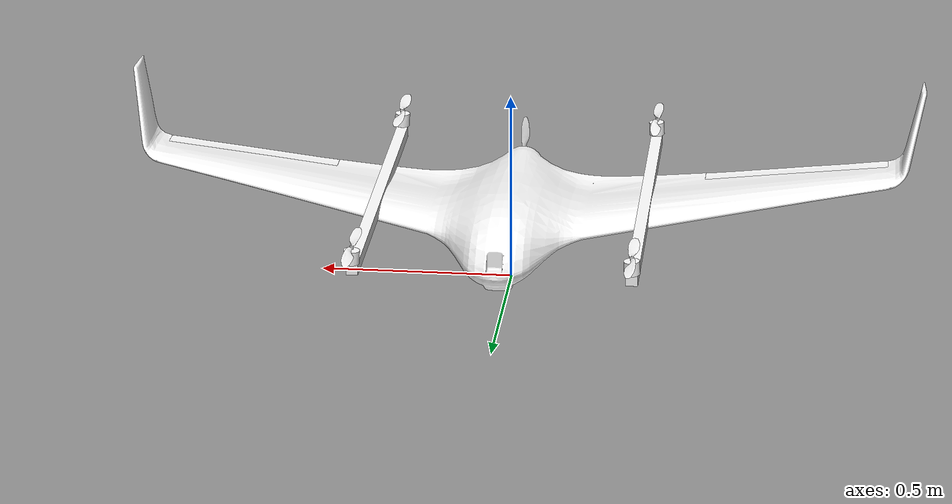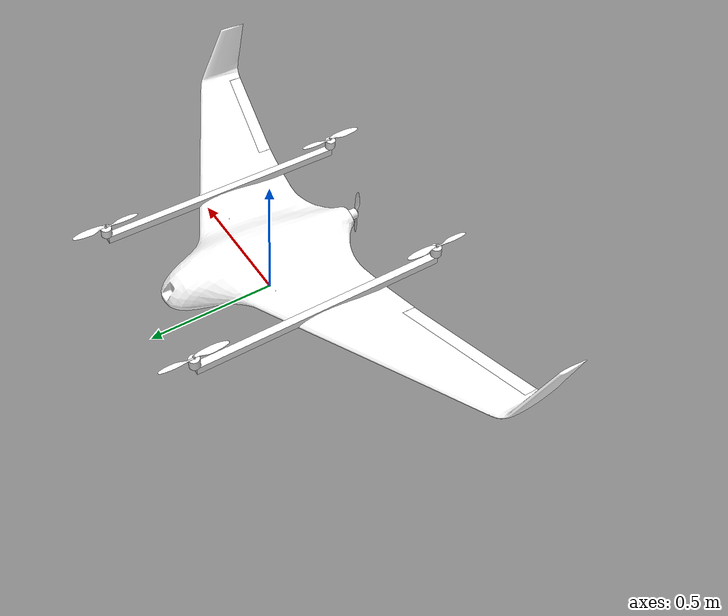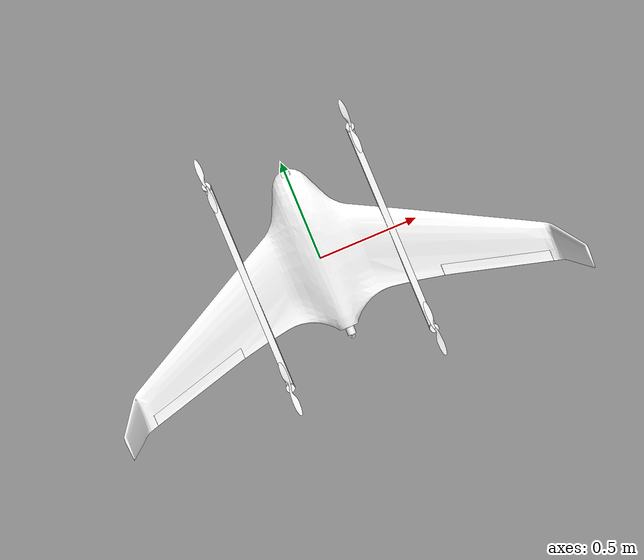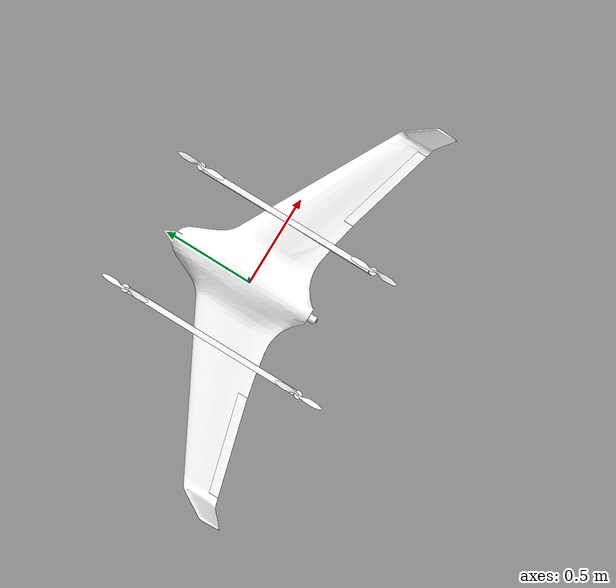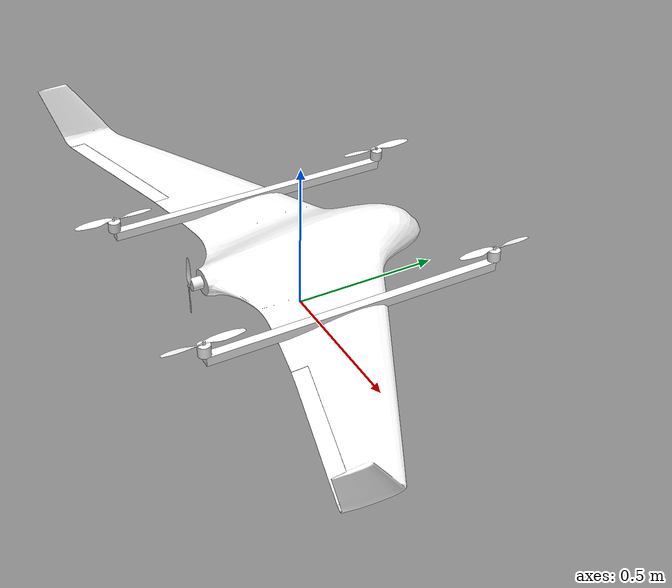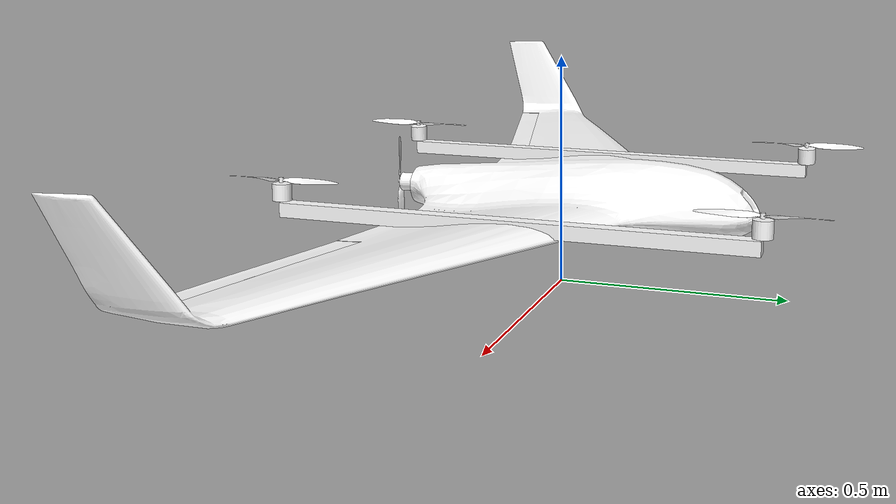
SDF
<sdf version="1.7">
 <world name="runway">
  <gravity>0 0 -9.8000000000000007</gravity>
  <magnetic_field>2.5e-05 1.0e-06 4.0e-05</magnetic_field>
  <atmosphere type="adiabatic"><temperature>288.15</temperature><pressure>101325</pressure></atmosphere>
  <plugin filename="gz-sim-physics-system" name="gz::sim::systems::Physics"/>
  <plugin filename="gz-sim-user-commands-system" name="gz::sim::systems::UserCommands"/>
  <plugin filename="gz-sim-scene-broadcaster-system" name="gz::sim::systems::SceneBroadcaster"/>
  <plugin filename="gz-sim-imu-system" name="gz::sim::systems::Imu"/>
  <plugin filename="gz-sim-magnetometer-system" name="gz::sim::systems::Magnetometer"/>
  <plugin filename="gz-sim-navsat-system" name="gz::sim::systems::NavSat"/>
  <spherical_coordinates>
   <latitude_deg>-35.363262</latitude_deg>
   <longitude_deg>149.165237</longitude_deg>
   <elevation>584</elevation>
   <heading_deg>0</heading_deg>
   <surface_model>EARTH_WGS84</surface_model>
  </spherical_coordinates>
  <scene><ambient>1.0 1.0 1.0</ambient><background>0.8 0.8 0.8</background></scene>
  <light type="directional" name="sun">
   <pose>0 0 10 0 0 0</pose>
   <diffuse>0.8 0.8 0.8 1</diffuse>
   <specular>0.8 0.8 0.8 1</specular>
   <attenuation>
    <range>1000</range>
    <constant>0.9</constant>
    <linear>0.01</linear>
    <quadratic>0.001</quadratic>
   </attenuation>
   <direction>-0.5 0.1 -0.9</direction>
  </light>
  <include><pose degrees="true">0 0 0.2 0 0 90</pose><uri>model://skywalker_x8_quad</uri></include>
 </world>
</sdf>

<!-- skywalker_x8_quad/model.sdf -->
<sdf version="1.7">
  <model name="skywalker_x8_quad">
    <pose>0 0 0.246 0 0 0</pose>

    <link name='base_link'>
      <pose>0 0 0 0 0 0</pose>
      <inertial>
        <pose>0 0 0 0 0 0</pose>
        <mass>4.5</mass>
        <inertia>
          <ixx>0.45</ixx>
          <ixy>0</ixy>
          <ixz>0.06</ixz>
          <iyy>0.325</iyy>
          <iyz>0</iyz>
          <izz>0.75</izz>
        </inertia>
      </inertial>
      <collision name='base_link_collision'>
        <pose>0 0 -0.07 0 0 0</pose>
        <geometry>
          <box>
            <size>0.80 2.15 0.2</size>
          </box>
        </geometry>
      </collision>
      <visual name='base_link_visual'>
        <geometry>
          <mesh>
            <uri>model://skywalker_x8/meshes/x8_wing.dae</uri>
          </mesh>
        </geometry>
        <material>
          <diffuse>1.0 1.0 1.0</diffuse>
          <specular>1.0 1.0 1.0</specular>
          <pbr>
            <metal>
                <albedo_map>model://skywalker_x8/materials/textures/x8.tga</albedo_map>
                <metalness>0.1</metalness>
            </metal>
          </pbr>
        </material>
      </visual>
      <visual name='left_motor_column'>
        <pose>0 0.35 0.01 0 0 0</pose>
        <geometry>
          <box>
            <size>0.98 0.03 0.03</size>
          </box>
        </geometry>
        <material>
          <ambient>1 1 1</ambient>
          <diffuse>1 1 1</diffuse>
          <specular>1 1 1</specular>
          <pbr>
            <metal>
              <albedo_map>model://skywalker_x8/materials/textures/metal_graphite/metal_graphite_basecolor.jpg</albedo_map>
              <metalness_map>model://skywalker_x8/materials/textures/metal_graphite/metal_graphite_metallic.jpg</metalness_map>
              <normal_map>model://skywalker_x8/materials/textures/metal_graphite/metal_graphite_normal.jpg</normal_map>
              <roughness_map>model://skywalker_x8/materials/textures/metal_graphite/metal_graphite_roughness.jpg</roughness_map>
              <roughness>1.0</roughness>
              <metalness>1.0</metalness>
            </metal>
          </pbr>
        </material>
      </visual>
      <visual name='right_motor_column'>
        <pose>0 -0.35 0.01 0 0 0</pose>
        <geometry>
          <box>
            <size>0.98 0.03 0.03</size>
          </box>
        </geometry>
        <material>
          <ambient>1 1 1</ambient>
          <diffuse>1 1 1</diffuse>
          <specular>1 1 1</specular>
          <pbr>
            <metal>
              <albedo_map>model://skywalker_x8/materials/textures/metal_graphite/metal_graphite_basecolor.jpg</albedo_map>
              <metalness_map>model://skywalker_x8/materials/textures/metal_graphite/metal_graphite_metallic.jpg</metalness_map>
              <normal_map>model://skywalker_x8/materials/textures/metal_graphite/metal_graphite_normal.jpg</normal_map>
              <roughness_map>model://skywalker_x8/materials/textures/metal_graphite/metal_graphite_roughness.jpg</roughness_map>
              <roughness>1.0</roughness>
              <metalness>1.0</metalness>
            </metal>
          </pbr>
        </material>
      </visual>
      <visual name='m0'>
        <pose degrees="true">0.49 -0.35 0.045 -3 0 0</pose>
        <geometry>
          <cylinder>
            <length>0.035</length>
            <radius>0.02</radius>
          </cylinder>
        </geometry>
        <material>
          <ambient>1 1 1</ambient>
          <diffuse>1 1 1</diffuse>
          <specular>1 1 1</specular>
          <pbr>
            <metal>
              <albedo_map>model://skywalker_x8/materials/textures/blue_metal/blue_metal_basecolor.jpg</albedo_map>
              <metalness_map>model://skywalker_x8/materials/textures/blue_metal/blue_metal_metallic.jpg</metalness_map>
              <normal_map>model://skywalker_x8/materials/textures/blue_metal/blue_metal_normal.jpg</normal_map>
              <roughness_map>model://skywalker_x8/materials/textures/blue_metal/blue_metal_roughness.jpg</roughness_map>
              <roughness>1.0</roughness>
              <metalness>1.0</metalness>
            </metal>
          </pbr>
        </material>
      </visual>
      <visual name='m1'>
        <pose degrees="true">-0.49 0.35 0.045 3 0 0</pose>
        <geometry>
          <cylinder>
            <length>0.035</length>
            <radius>0.02</radius>
          </cylinder>
        </geometry>
        <material>
          <ambient>1 1 1</ambient>
          <diffuse>1 1 1</diffuse>
          <specular>1 1 1</specular>
          <pbr>
            <metal>
              <albedo_map>model://skywalker_x8/materials/textures/blue_metal/blue_metal_basecolor.jpg</albedo_map>
              <metalness_map>model://skywalker_x8/materials/textures/blue_metal/blue_metal_metallic.jpg</metalness_map>
              <normal_map>model://skywalker_x8/materials/textures/blue_metal/blue_metal_normal.jpg</normal_map>
              <roughness_map>model://skywalker_x8/materials/textures/blue_metal/blue_metal_roughness.jpg</roughness_map>
              <roughness>1.0</roughness>
              <metalness>1.0</metalness>
            </metal>
          </pbr>
        </material>
      </visual>
      <visual name='m2'>
        <pose degrees="true">0.49 0.35 0.045 3 0 0</pose>
        <geometry>
          <cylinder>
            <length>0.035</length>
            <radius>0.02</radius>
          </cylinder>
        </geometry>
        <material>
          <ambient>1 1 1</ambient>
          <diffuse>1 1 1</diffuse>
          <specular>1 1 1</specular>
          <pbr>
            <metal>
              <albedo_map>model://skywalker_x8/materials/textures/blue_metal/blue_metal_basecolor.jpg</albedo_map>
              <metalness_map>model://skywalker_x8/materials/textures/blue_metal/blue_metal_metallic.jpg</metalness_map>
              <normal_map>model://skywalker_x8/materials/textures/blue_metal/blue_metal_normal.jpg</normal_map>
              <roughness_map>model://skywalker_x8/materials/textures/blue_metal/blue_metal_roughness.jpg</roughness_map>
              <roughness>1.0</roughness>
              <metalness>1.0</metalness>
            </metal>
          </pbr>
        </material>
      </visual>
      <visual name='m3'>
        <pose degrees="true">-0.49 -0.35 0.045 -3 0 0</pose>
        <geometry>
          <cylinder>
            <length>0.035</length>
            <radius>0.02</radius>
          </cylinder>
        </geometry>
        <material>
          <ambient>1 1 1</ambient>
          <diffuse>1 1 1</diffuse>
          <specular>1 1 1</specular>
          <pbr>
            <metal>
              <albedo_map>model://skywalker_x8/materials/textures/blue_metal/blue_metal_basecolor.jpg</albedo_map>
              <metalness_map>model://skywalker_x8/materials/textures/blue_metal/blue_metal_metallic.jpg</metalness_map>
              <normal_map>model://skywalker_x8/materials/textures/blue_metal/blue_metal_normal.jpg</normal_map>
              <roughness_map>model://skywalker_x8/materials/textures/blue_metal/blue_metal_roughness.jpg</roughness_map>
              <roughness>1.0</roughness>
              <metalness>1.0</metalness>
            </metal>
          </pbr>
        </material>
      </visual>
      <visual name='m4'>
        <pose degrees="true">-0.361 0 0.0 0 90 0</pose>
        <geometry>
          <cylinder>
            <length>0.035</length>
            <radius>0.02</radius>
          </cylinder>
        </geometry>
        <material>
          <ambient>1 1 1</ambient>
          <diffuse>1 1 1</diffuse>
          <specular>1 1 1</specular>
          <pbr>
            <metal>
              <albedo_map>model://skywalker_x8/materials/textures/blue_metal/blue_metal_basecolor.jpg</albedo_map>
              <metalness_map>model://skywalker_x8/materials/textures/blue_metal/blue_metal_metallic.jpg</metalness_map>
              <normal_map>model://skywalker_x8/materials/textures/blue_metal/blue_metal_normal.jpg</normal_map>
              <roughness_map>model://skywalker_x8/materials/textures/blue_metal/blue_metal_roughness.jpg</roughness_map>
              <roughness>1.0</roughness>
              <metalness>1.0</metalness>
            </metal>
          </pbr>
        </material>
      </visual>
      <sensor name="magnetometer_sensor" type="magnetometer">
        <pose>0 0 0 0 0 0</pose>
        <always_on>1</always_on>
        <update_rate>50</update_rate>
      </sensor>
      <sensor name="navsat_sensor" type="navsat">
        <always_on>1</always_on>
        <update_rate>10</update_rate>
        <navsat>
          <position_sensing></position_sensing>
          <velocity_sensing></velocity_sensing>
        </navsat>
      </sensor>
      <!-- save for debugging use -->
    </link>

    <link name='rotor_0'>
      <pose degrees="true">0.49 -0.35 0.07 -3 0 0</pose>
      <inertial>
        <pose>0 0 0 0 0 0</pose>
        <mass>0.025</mass>
        <inertia>
          <ixx>9.75e-06</ixx>
          <ixy>0</ixy>
          <ixz>0</ixz>
          <iyy>0.000166704</iyy>
          <iyz>0</iyz>
          <izz>0.000167604</izz>
        </inertia>
      </inertial>
      <collision name='rotor_0_collision'>
        <pose>0 0 0 0 0 0</pose>
        <geometry>
          <cylinder>
            <length>0.005</length>
            <radius>0.105</radius>
          </cylinder>
        </geometry>
      </collision>
      <visual name='rotor_0_visual'>
        <pose>0 0 0 0 0 0</pose>
        <geometry>
          <mesh>
            <scale>1 1 1</scale>
            <uri>model://skywalker_x8/meshes/iris_prop_cw.dae</uri>
          </mesh>
        </geometry>
        <material>
          <diffuse>1.0 1.0 1.0</diffuse>
          <specular>1.0 1.0 1.0</specular>
          <pbr>
            <metal>
                <albedo_map>model://skywalker_x8/materials/textures/x8.tga</albedo_map>
                <metalness>0.5</metalness>
            </metal>
          </pbr>
        </material>
      </visual>
    </link>
    <joint name='rotor_0_joint' type='revolute'>
      <child>rotor_0</child>
      <parent>base_link</parent>
      <axis>
        <xyz>0 0 1</xyz>
        <limit>
          <lower>-1e+16</lower>
          <upper>1e+16</upper>
        </limit>
        <dynamics>
          <damping>0.002</damping>
        </dynamics>
        <use_parent_model_frame>1</use_parent_model_frame>
      </axis>
    </joint>

    <link name='rotor_1'>
      <pose degrees="true">-0.49 0.35 0.07 3 0 0</pose>
      <inertial>
        <pose>0 0 0 0 0 0</pose>
        <mass>0.025</mass>
        <inertia>
          <ixx>9.75e-06</ixx>
          <ixy>0</ixy>
          <ixz>0</ixz>
          <iyy>0.000166704</iyy>
          <iyz>0</iyz>
          <izz>0.000167604</izz>
        </inertia>
      </inertial>
      <collision name='rotor_1_collision'>
        <pose>0 0 0 0 0 0</pose>
        <geometry>
          <cylinder>
            <length>0.005</length>
            <radius>0.105</radius>
          </cylinder>
        </geometry>
      </collision>
      <visual name='rotor_1_visual'>
        <pose>0 0 0 0 0 0</pose>
        <geometry>
          <mesh>
            <scale>1 1 1</scale>
            <uri>model://skywalker_x8/meshes/iris_prop_cw.dae</uri>
          </mesh>
        </geometry>
        <material>
          <diffuse>1.0 1.0 1.0</diffuse>
          <specular>1.0 1.0 1.0</specular>
          <pbr>
            <metal>
                <albedo_map>model://skywalker_x8/materials/textures/x8.tga</albedo_map>
                <metalness>0.5</metalness>
            </metal>
          </pbr>
        </material>
      </visual>
    </link>
    <joint name='rotor_1_joint' type='revolute'>
      <child>rotor_1</child>
      <parent>base_link</parent>
      <axis>
        <xyz>0 0 1</xyz>
        <limit>
          <lower>-1e+16</lower>
          <upper>1e+16</upper>
        </limit>
        <dynamics>
          <damping>0.002</damping>
        </dynamics>
        <use_parent_model_frame>1</use_parent_model_frame>
      </axis>
    </joint>

    <link name='rotor_2'>
      <pose degrees="true">0.49 0.35 0.07 3 0 0</pose>
      <inertial>
        <pose>0 0 0 0 0 0</pose>
        <mass>0.025</mass>
        <inertia>
          <ixx>9.75e-06</ixx>
          <ixy>0</ixy>
          <ixz>0</ixz>
          <iyy>0.000166704</iyy>
          <iyz>0</iyz>
          <izz>0.000167604</izz>
        </inertia>
      </inertial>
      <collision name='rotor_2_collision'>
        <pose>0 0 0 0 0 0</pose>
        <geometry>
          <cylinder>
            <length>0.005</length>
            <radius>0.105</radius>
          </cylinder>
        </geometry>
      </collision>
      <visual name='rotor_2_visual'>
        <pose>0 0 0 0 0 0</pose>
        <geometry>
          <mesh>
            <scale>1 1 1</scale>
            <uri>model://skywalker_x8/meshes/iris_prop_ccw.dae</uri>
          </mesh>
        </geometry>
        <material>
          <diffuse>1.0 1.0 1.0</diffuse>
          <specular>1.0 1.0 1.0</specular>
          <pbr>
            <metal>
                <albedo_map>model://skywalker_x8/materials/textures/x8.tga</albedo_map>
                <metalness>0.5</metalness>
            </metal>
          </pbr>
        </material>
      </visual>
    </link>
    <joint name='rotor_2_joint' type='revolute'>
      <child>rotor_2</child>
      <parent>base_link</parent>
      <axis>
        <xyz>0 0 1</xyz>
        <limit>
          <lower>-1e+16</lower>
          <upper>1e+16</upper>
        </limit>
        <dynamics>
          <damping>0.002</damping>
        </dynamics>
        <use_parent_model_frame>1</use_parent_model_frame>
      </axis>
    </joint>

    <link name='rotor_3'>
      <pose degrees="true">-0.49 -0.35 0.07 -3 0 0</pose>
      <inertial>
        <pose>0 0 0 0 0 0</pose>
        <mass>0.025</mass>
        <inertia>
          <ixx>9.75e-06</ixx>
          <ixy>0</ixy>
          <ixz>0</ixz>
          <iyy>0.000166704</iyy>
          <iyz>0</iyz>
          <izz>0.000167604</izz>
        </inertia>
      </inertial>
      <collision name='rotor_3_collision'>
        <pose>0 0 0 0 0 0</pose>
        <geometry>
          <cylinder>
            <length>0.005</length>
            <radius>0.105</radius>
          </cylinder>
        </geometry>
      </collision>
      <visual name='rotor_3_visual'>
        <pose>0 0 0 0 0 0</pose>
        <geometry>
          <mesh>
            <scale>1 1 1</scale>
            <uri>model://skywalker_x8/meshes/iris_prop_ccw.dae</uri>
          </mesh>
        </geometry>
        <material>
          <diffuse>1.0 1.0 1.0</diffuse>
          <specular>1.0 1.0 1.0</specular>
          <pbr>
            <metal>
                <albedo_map>model://skywalker_x8/materials/textures/x8.tga</albedo_map>
                <metalness>0.5</metalness>
            </metal>
          </pbr>
        </material>
      </visual>
    </link>
    <joint name='rotor_3_joint' type='revolute'>
      <child>rotor_3</child>
      <parent>base_link</parent>
      <axis>
        <xyz>0 0 1</xyz>
        <limit>
          <lower>-1e+16</lower>
          <upper>1e+16</upper>
        </limit>
        <dynamics>
          <damping>0.002</damping>
        </dynamics>
        <use_parent_model_frame>1</use_parent_model_frame>
      </axis>
    </joint>

    <link name='rotor_pusher'>
      <pose degrees="true">-0.385 0 0.0 0 90 0</pose>
      <inertial>
        <mass>0.025</mass>
        <inertia>
          <ixx>9.75e-06</ixx>
          <ixy>0</ixy>
          <ixz>0</ixz>
          <iyy>0.000166704</iyy>
          <iyz>0</iyz>
          <izz>0.000167604</izz>
        </inertia>
      </inertial>
      <collision name='collision'>
        <pose>0 0 0 0 0 0</pose>
        <geometry>
          <cylinder>
            <length>0.005</length>
            <radius>0.065</radius>
          </cylinder>
        </geometry>
      </collision>
      <visual name='visual'>
        <pose>0 0 0 0 0 0</pose>
        <geometry>
          <mesh>
            <scale>0.8 0.8 0.8</scale>
            <uri>model://skywalker_x8/meshes/iris_prop_ccw.dae</uri>
          </mesh>
        </geometry>
        <material>
          <diffuse>1.0 1.0 1.0</diffuse>
          <specular>1.0 1.0 1.0</specular>
          <pbr>
            <metal>
                <albedo_map>model://skywalker_x8/materials/textures/x8.tga</albedo_map>
                <metalness>0.5</metalness>
            </metal>
          </pbr>
        </material>
      </visual>
    </link>
    <joint name='rotor_pusher_joint' type='revolute'>
      <child>rotor_pusher</child>
      <parent>base_link</parent>
      <axis>
        <xyz>0 0 1</xyz>
        <limit>
          <lower>-1e+16</lower>
          <upper>1e+16</upper>
        </limit>
        <dynamics>
          <damping>0.002</damping>
        </dynamics>
        <use_parent_model_frame>1</use_parent_model_frame>
      </axis>
    </joint>

    <link name="left_elevon">
      <inertial>
        <mass>0.1</mass>
        <inertia>
          <ixx>0.000102319</ixx>
          <ixy>0</ixy>
          <iyy>0.00334417</iyy>
          <ixz>0</ixz>
          <iyz>0</iyz>
          <izz>0.003446072</izz>
        </inertia>
        <pose>-0.30 0.75 -0.005 0 0 0</pose>
      </inertial>
      <visual name='left_elevon_visual'>
        <geometry>
          <mesh>
            <uri>model://skywalker_x8/meshes/x8_elevon_left.dae</uri>
          </mesh>
        </geometry>
        <material>
          <diffuse>1.0 1.0 1.0</diffuse>
          <specular>1.0 1.0 1.0</specular>
          <pbr>
            <metal>
                <albedo_map>model://skywalker_x8/materials/textures/x8.tga</albedo_map>
                <metalness>0.1</metalness>
            </metal>
          </pbr>
        </material>
      </visual>
    </link>

    <link name="right_elevon">
      <inertial>
        <mass>0.1</mass>
        <inertia>
          <ixx>0.000102319</ixx>
          <ixy>0</ixy>
          <iyy>0.00334417</iyy>
          <ixz>0</ixz>
          <iyz>0</iyz>
          <izz>0.003446072</izz>
        </inertia>
        <pose>-0.30 -0.75 -0.005 0 0 0</pose>
      </inertial>
      <visual name='right_elevon_visual'>
        <geometry>
          <mesh>
            <uri>model://skywalker_x8/meshes/x8_elevon_right.dae</uri>
          </mesh>
        </geometry>
        <material>
          <diffuse>1.0 1.0 1.0</diffuse>
          <specular>1.0 1.0 1.0</specular>
          <pbr>
            <metal>
                <albedo_map>model://skywalker_x8/materials/textures/x8.tga</albedo_map>
                <metalness>0.1</metalness>
            </metal>
          </pbr>
        </material>
      </visual>
    </link>

    <!-- Joint range -30/+30 deg. -->
    <joint name='left_elevon_joint' type='revolute'>
      <parent>base_link</parent>
      <child>left_elevon</child>
      <pose>-0.27 0.6 -0.005 0 0 0.265</pose>
      <axis>
        <xyz>0 1 0</xyz>
        <limit>
          <lower>-0.53</lower>
          <upper>0.53</upper>
        </limit>
        <dynamics>
          <damping>0.1</damping>
        </dynamics>
      </axis>
    </joint>

    <!-- Joint range -30/+30 deg. -->
    <joint name='right_elevon_joint' type='revolute'>
      <parent>base_link</parent>
      <child>right_elevon</child>
      <pose>-0.27 -0.6 -0.005 0 0 -0.265</pose>
      <axis>
        <xyz>0 1 0</xyz>
        <limit>
          <lower>-0.53</lower>
          <upper>0.53</upper>
        </limit>
        <dynamics>
          <damping>0.1</damping>
        </dynamics>
      </axis>
    </joint>

    <!-- sensors -->
    <link name='imu_link'>
      <inertial>
        <pose>0 0 0 0 0 0</pose>
        <mass>0.15</mass>
        <inertia>
          <ixx>0.00002</ixx>
          <ixy>0</ixy>
          <ixz>0</ixz>
          <iyy>0.00002</iyy>
          <iyz>0</iyz>
          <izz>0.00002</izz>
        </inertia>
      </inertial>
      <sensor name="imu_sensor" type="imu">
        <pose degrees="true">0 0 0 180 0 0</pose>
        <always_on>1</always_on>
        <update_rate>1000.0</update_rate>
      </sensor>
    </link>
    <joint name='skywalker_x8_quad/imu_joint' type='revolute'>
      <child>imu_link</child>
      <parent>base_link</parent>
      <axis>
        <xyz>0 0 1</xyz>
        <limit>
          <lower>0</lower>
          <upper>0</upper>
          <effort>0</effort>
          <velocity>0</velocity>
        </limit>
        <dynamics>
          <damping>1.0</damping>
        </dynamics>
        <use_parent_model_frame>1</use_parent_model_frame>
      </axis>
    </joint>

    <!-- plugins -->
    <plugin filename="gz-sim-joint-state-publisher-system"
      name="gz::sim::systems::JointStatePublisher">
    </plugin>
    <!-- rotor_0 lift-drag -->
    <plugin filename="gz-sim-lift-drag-system"
        name="gz::sim::systems::LiftDrag">
      <a0>0.3</a0>
      <alpha_stall>1.4</alpha_stall>
      <cla>4.2500</cla>
      <cda>0.10</cda>
      <cma>0.0</cma>
      <cla_stall>-0.025</cla_stall>
      <cda_stall>0.0</cda_stall>
      <cma_stall>0.0</cma_stall>
      <area>0.002</area>
      <air_density>1.2041</air_density>
      <cp>0.084 0 0</cp>
      <forward>0 -1 0</forward>
      <upward>0 0 1</upward>
      <link_name>rotor_0</link_name>
    </plugin>
    <plugin filename="gz-sim-lift-drag-system"
        name="gz::sim::systems::LiftDrag">
      <a0>0.3</a0>
      <alpha_stall>1.4</alpha_stall>
      <cla>4.2500</cla>
      <cda>0.10</cda>
      <cma>0.0</cma>
      <cla_stall>-0.025</cla_stall>
      <cda_stall>0.0</cda_stall>
      <cma_stall>0.0</cma_stall>
      <area>0.002</area>
      <air_density>1.2041</air_density>
      <cp>-0.084 0 0</cp>
      <forward>0 1 0</forward>
      <upward>0 0 1</upward>
      <link_name>rotor_0</link_name>
    </plugin>
    <!-- rotor_1 lift-drag -->
    <plugin filename="gz-sim-lift-drag-system"
        name="gz::sim::systems::LiftDrag">
      <a0>0.3</a0>
      <alpha_stall>1.4</alpha_stall>
      <cla>4.2500</cla>
      <cda>0.10</cda>
      <cma>0.0</cma>
      <cla_stall>-0.025</cla_stall>
      <cda_stall>0.0</cda_stall>
      <cma_stall>0.0</cma_stall>
      <area>0.002</area>
      <air_density>1.2041</air_density>
      <cp>0.084 0 0</cp>
      <forward>0 -1 0</forward>
      <upward>0 0 1</upward>
      <link_name>rotor_1</link_name>
    </plugin>
    <plugin filename="gz-sim-lift-drag-system"
        name="gz::sim::systems::LiftDrag">
      <a0>0.3</a0>
      <alpha_stall>1.4</alpha_stall>
      <cla>4.2500</cla>
      <cda>0.10</cda>
      <cma>0.0</cma>
      <cla_stall>-0.025</cla_stall>
      <cda_stall>0.0</cda_stall>
      <cma_stall>0.0</cma_stall>
      <area>0.002</area>
      <air_density>1.2041</air_density>
      <cp>-0.084 0 0</cp>
      <forward>0 1 0</forward>
      <upward>0 0 1</upward>
      <link_name>rotor_1</link_name>
    </plugin>
    <!-- rotor_2 lift-drag -->
    <plugin filename="gz-sim-lift-drag-system"
        name="gz::sim::systems::LiftDrag">
      <a0>0.3</a0>
      <alpha_stall>1.4</alpha_stall>
      <cla>4.2500</cla>
      <cda>0.10</cda>
      <cma>0.0</cma>
      <cla_stall>-0.025</cla_stall>
      <cda_stall>0.0</cda_stall>
      <cma_stall>0.0</cma_stall>
      <area>0.002</area>
      <air_density>1.2041</air_density>
      <cp>0.084 0 0</cp>
      <forward>0 1 0</forward>
      <upward>0 0 1</upward>
      <link_name>rotor_2</link_name>
    </plugin>
    <plugin filename="gz-sim-lift-drag-system"
        name="gz::sim::systems::LiftDrag">
      <a0>0.3</a0>
      <alpha_stall>1.4</alpha_stall>
      <cla>4.2500</cla>
      <cda>0.10</cda>
      <cma>0.0</cma>
      <cla_stall>-0.025</cla_stall>
      <cda_stall>0.0</cda_stall>
      <cma_stall>0.0</cma_stall>
      <area>0.002</area>
      <air_density>1.2041</air_density>
      <cp>-0.084 0 0</cp>
      <forward>0 -1 0</forward>
      <upward>0 0 1</upward>
      <link_name>rotor_2</link_name>
    </plugin>
    <!-- rotor_3 lift-drag -->
    <plugin filename="gz-sim-lift-drag-system"
        name="gz::sim::systems::LiftDrag">
      <a0>0.3</a0>
      <alpha_stall>1.4</alpha_stall>
      <cla>4.2500</cla>
      <cda>0.10</cda>
      <cma>0.0</cma>
      <cla_stall>-0.025</cla_stall>
      <cda_stall>0.0</cda_stall>
      <cma_stall>0.0</cma_stall>
      <area>0.002</area>
      <air_density>1.2041</air_density>
      <cp>0.084 0 0</cp>
      <forward>0 1 0</forward>
      <upward>0 0 1</upward>
      <link_name>rotor_3</link_name>
    </plugin>
    <plugin filename="gz-sim-lift-drag-system"
        name="gz::sim::systems::LiftDrag">
      <a0>0.3</a0>
      <alpha_stall>1.4</alpha_stall>
      <cla>4.2500</cla>
      <cda>0.10</cda>
      <cma>0.0</cma>
      <cla_stall>-0.025</cla_stall>
      <cda_stall>0.0</cda_stall>
      <cma_stall>0.0</cma_stall>
      <area>0.002</area>
      <air_density>1.2041</air_density>
      <cp>-0.084 0 0</cp>
      <forward>0 -1 0</forward>
      <upward>0 0 1</upward>
      <link_name>rotor_3</link_name>
    </plugin>
    <!-- rotor_pusher lift-drag -->
    <plugin filename="gz-sim-lift-drag-system"
        name="gz::sim::systems::LiftDrag">
      <a0>0.30</a0>
      <alpha_stall>1.4</alpha_stall>
      <cla>4.2500</cla>
      <cda>0.10</cda>
      <cma>0.0</cma>
      <cla_stall>-0.025</cla_stall>
      <cda_stall>0.0</cda_stall>
      <cma_stall>0.0</cma_stall>
      <area>0.02</area>
      <air_density>1.2041</air_density>
      <cp>0.074205 0 0</cp>
      <forward>0 1 0</forward>
      <upward>0 0 1</upward>
      <link_name>rotor_pusher</link_name>
    </plugin>
    <plugin filename="gz-sim-lift-drag-system"
        name="gz::sim::systems::LiftDrag">
      <a0>0.30</a0>
      <alpha_stall>1.4</alpha_stall>
      <cla>4.2500</cla>
      <cda>0.10</cda>
      <cma>0.0</cma>
      <cla_stall>-0.025</cla_stall>
      <cda_stall>0.0</cda_stall>
      <cma_stall>0.0</cma_stall>
      <area>0.02</area>
      <air_density>1.2041</air_density>
      <cp>-0.074205 0 0</cp>
      <forward>0 -1 0</forward>
      <upward>0 0 1</upward>
      <link_name>rotor_pusher</link_name>
    </plugin>
    <!-- wing lift-drag -->
    <plugin filename="gz-sim-lift-drag-system"
        name="gz::sim::systems::LiftDrag">
      <a0>0.13</a0>
      <cla>3.7</cla>
      <cda>0.06417112299</cda>
      <cma>0.0</cma>
      <alpha_stall>0.3391428111</alpha_stall>
      <cla_stall>-3.85</cla_stall>
      <cda_stall>-0.9233984055</cda_stall>
      <cma_stall>0.0</cma_stall>
      <cp>0.01 0 0</cp>
      <area>0.80</area>
      <air_density>1.2041</air_density>
      <forward>1 0 0</forward>
      <upward>0 0 1</upward>
      <link_name>base_link</link_name>
    </plugin>
    <!-- left_elevon lift-drag -->
    <plugin filename="gz-sim-lift-drag-system"
        name="gz::sim::systems::LiftDrag">
      <a0>0.15</a0>
      <cla>6.8</cla>
      <cda>0.06417112299</cda>
      <cma>0.0</cma>
      <alpha_stall>0.6391428111</alpha_stall>
      <cla_stall>-3.85</cla_stall>
      <cda_stall>-0.9233984055</cda_stall>
      <cma_stall>0.0</cma_stall>
      <cp>-0.30 0.75 -0.005</cp>
      <area>0.10</area>
      <air_density>1.2041</air_density>
      <forward>1 0 0</forward>
      <upward>0 0 1</upward>
      <link_name>base_link</link_name>
      <control_joint_name>left_elevon_joint</control_joint_name>
      <control_joint_rad_to_cl>-5.0</control_joint_rad_to_cl>
    </plugin>
    <!-- right_elevon lift-drag -->
    <plugin filename="gz-sim-lift-drag-system"
        name="gz::sim::systems::LiftDrag">
      <a0>0.15</a0>
      <cla>6.8</cla>
      <cda>0.06417112299</cda>
      <cma>0.0</cma>
      <alpha_stall>0.6391428111</alpha_stall>
      <cla_stall>-3.85</cla_stall>
      <cda_stall>-0.9233984055</cda_stall>
      <cma_stall>0.0</cma_stall>
      <cp>-0.30 -0.75 -0.005</cp>
      <area>0.10</area>
      <air_density>1.2041</air_density>
      <forward>1 0 0</forward>
      <upward>0 0 1</upward>
      <link_name>base_link</link_name>
      <control_joint_name>right_elevon_joint</control_joint_name>
      <control_joint_rad_to_cl>-5.0</control_joint_rad_to_cl>
    </plugin>
    <!-- left_winglet lift-drag -->
    <plugin filename="gz-sim-lift-drag-system"
        name="gz::sim::systems::LiftDrag">
      <a0>0.0</a0>
      <cla>4.752798721</cla>
      <cda>0.6417112299</cda>
      <cma>0.0</cma>
      <alpha_stall>0.3391428111</alpha_stall>
      <cla_stall>-3.85</cla_stall>
      <cda_stall>-0.9233984055</cda_stall>
      <cma_stall>0.0</cma_stall>
      <cp>-0.36 1.04 0.08</cp>
      <area>0.12</area>
      <air_density>1.2041</air_density>
      <forward>1 0 0</forward>
      <upward>0 1 0</upward>
      <link_name>base_link</link_name>
    </plugin>
    <!-- right_winglet lift-drag -->
    <plugin filename="gz-sim-lift-drag-system"
        name="gz::sim::systems::LiftDrag">
      <a0>0.0</a0>
      <cla>4.752798721</cla>
      <cda>0.6417112299</cda>
      <cma>0.0</cma>
      <alpha_stall>0.3391428111</alpha_stall>
      <cla_stall>-3.85</cla_stall>
      <cda_stall>-0.9233984055</cda_stall>
      <cma_stall>0.0</cma_stall>
      <cp>-0.36 -1.04 0.08</cp>
      <area>0.12</area>
      <air_density>1.2041</air_density>
      <forward>1 0 0</forward>
      <upward>0 -1 0</upward>
      <link_name>base_link</link_name>
    </plugin>

    <plugin filename="gz-sim-apply-joint-force-system"
      name="gz::sim::systems::ApplyJointForce">
      <joint_name>rotor_0_joint</joint_name>
    </plugin>
    <plugin filename="gz-sim-apply-joint-force-system"
      name="gz::sim::systems::ApplyJointForce">
      <joint_name>rotor_1_joint</joint_name>
    </plugin>
    <plugin filename="gz-sim-apply-joint-force-system"
      name="gz::sim::systems::ApplyJointForce">
      <joint_name>rotor_2_joint</joint_name>
    </plugin>
    <plugin filename="gz-sim-apply-joint-force-system"
      name="gz::sim::systems::ApplyJointForce">
      <joint_name>rotor_3_joint</joint_name>
    </plugin>
    <plugin filename="gz-sim-apply-joint-force-system"
      name="gz::sim::systems::ApplyJointForce">
      <joint_name>rotor_pusher_joint</joint_name>
    </plugin>
    <plugin filename="gz-sim-apply-joint-force-system"
      name="gz::sim::systems::ApplyJointForce">
      <joint_name>left_elevon_joint</joint_name>
    </plugin>
    <plugin filename="gz-sim-apply-joint-force-system"
      name="gz::sim::systems::ApplyJointForce">
      <joint_name>right_elevon_joint</joint_name>
    </plugin>

    <plugin name="ArduPilotPlugin" filename="ArduPilotPlugin">
      <!-- Port settings -->
      <fdm_addr>127.0.0.1</fdm_addr>
      <fdm_port_in>9002</fdm_port_in>
      <connectionTimeoutMaxCount>5</connectionTimeoutMaxCount>
      <lock_step>1</lock_step>

      <modelXYZToAirplaneXForwardZDown degrees="true">0 0 0 180 0 0</modelXYZToAirplaneXForwardZDown>
      <gazeboXYZToNED degrees="true">0 0 0 180 0 90</gazeboXYZToNED>

      <!-- Sensors -->
      <imuName>imu_sensor</imuName>

      <!--
          incoming control command [0, 1]
          so offset it by 0 to get [0, 1]
          and divide max target by 1.
          offset = 0
          multiplier = 838 max rpm / 1 = 838
        -->

      <!--
          SERVO3_FUNCTION   70 (Throttle)
          SERVO3_MAX        2000
          SERVO3_MIN        1000
          SERVO3_REVERSED   0
          SERVO3_TRIM       1000
       -->
      <control channel="2">
        <jointName>rotor_pusher_joint</jointName>
        <useForce>1</useForce>
        <multiplier>838</multiplier>
        <offset>0</offset>
        <servo_min>1000</servo_min>
        <servo_max>2000</servo_max>
        <type>VELOCITY</type>
        <p_gain>0.20</p_gain>
        <i_gain>0</i_gain>
        <d_gain>0</d_gain>
        <i_max>0</i_max>
        <i_min>0</i_min>
        <cmd_max>2.5</cmd_max>
        <cmd_min>-2.5</cmd_min>
      </control>

      <control channel="0">
        <jointName>left_elevon_joint</jointName>
        <useForce>1</useForce>
        <multiplier>1.048</multiplier>
        <offset>-0.5</offset>
        <servo_min>1100</servo_min>
        <servo_max>1900</servo_max>
        <type>POSITION</type>
        <p_gain>10.0</p_gain>
        <i_gain>0</i_gain>
        <d_gain>0</d_gain>
        <i_max>0</i_max>
        <i_min>0</i_min>
        <cmd_max>2.5</cmd_max>
        <cmd_min>-2.5</cmd_min>
      </control>

      <!--
          SERVO2_FUNCTION   78 (Elevon Right)
          SERVO2_MAX        1900
          SERVO2_MIN        1100
          SERVO2_REVERSED   0
          SERVO2_TRIM       1500
       -->
      <control channel="1">
        <jointName>right_elevon_joint</jointName>
        <useForce>1</useForce>
        <multiplier>1.048</multiplier>
        <offset>-0.5</offset>
        <servo_min>1100</servo_min>
        <servo_max>1900</servo_max>
        <type>POSITION</type>
        <p_gain>10.0</p_gain>
        <i_gain>0</i_gain>
        <d_gain>0</d_gain>
        <i_max>0</i_max>
        <i_min>0</i_min>
        <cmd_max>2.5</cmd_max>
        <cmd_min>-2.5</cmd_min>
      </control>

      <!--
          SERVO5_FUNCTION   33 (Motor1 Front Right CCW)
          SERVO5_MAX        1900
          SERVO5_MIN        1100
          SERVO5_REVERSED   0
          SERVO5_TRIM       1500
       -->
      <control channel="4">
        <jointName>rotor_0_joint</jointName>
        <useForce>1</useForce>
        <multiplier>-1500</multiplier>
        <offset>0</offset>
        <servo_min>1100</servo_min>
        <servo_max>1900</servo_max>
        <type>VELOCITY</type>
        <p_gain>0.20</p_gain>
        <i_gain>0</i_gain>
        <d_gain>0</d_gain>
        <i_max>0</i_max>
        <i_min>0</i_min>
        <cmd_max>2.5</cmd_max>
        <cmd_min>-2.5</cmd_min>
      </control>

      <!--
          SERVO6_FUNCTION   34 (Motor2 Rear Left CCW)
          SERVO6_MAX        1900
          SERVO6_MIN        1100
          SERVO6_REVERSED   0
          SERVO6_TRIM       1500
       -->
      <control channel="5">
        <jointName>rotor_1_joint</jointName>
        <useForce>1</useForce>
        <multiplier>-1500</multiplier>
        <offset>0</offset>
        <servo_min>1100</servo_min>
        <servo_max>1900</servo_max>
        <type>VELOCITY</type>
        <p_gain>0.20</p_gain>
        <i_gain>0</i_gain>
        <d_gain>0</d_gain>
        <i_max>0</i_max>
        <i_min>0</i_min>
        <cmd_max>2.5</cmd_max>
        <cmd_min>-2.5</cmd_min>
      </control>

      <!--
          SERVO7_FUNCTION   35 (Motor3 Front Left CW)
          SERVO7_MAX        1900
          SERVO7_MIN        1100
          SERVO7_REVERSED   0
          SERVO7_TRIM       1500
       -->
      <control channel="6">
        <jointName>rotor_2_joint</jointName>
        <useForce>1</useForce>
        <multiplier>1500</multiplier>
        <offset>0</offset>
        <servo_min>1100</servo_min>
        <servo_max>1900</servo_max>
        <type>VELOCITY</type>
        <p_gain>0.20</p_gain>
        <i_gain>0</i_gain>
        <d_gain>0</d_gain>
        <i_max>0</i_max>
        <i_min>0</i_min>
        <cmd_max>2.5</cmd_max>
        <cmd_min>-2.5</cmd_min>
      </control>

      <!--
          SERVO8_FUNCTION   36 (Motor4 Rear Right CW)
          SERVO8_MAX        1900
          SERVO8_MIN        1100
          SERVO8_REVERSED   0
          SERVO8_TRIM       1500
       -->
      <control channel="7">
        <jointName>rotor_3_joint</jointName>
        <useForce>1</useForce>
        <multiplier>1500</multiplier>
        <offset>0</offset>
        <servo_min>1100</servo_min>
        <servo_max>1900</servo_max>
        <type>VELOCITY</type>
        <p_gain>0.20</p_gain>
        <i_gain>0</i_gain>
        <d_gain>0</d_gain>
        <i_max>0</i_max>
        <i_min>0</i_min>
        <cmd_max>2.5</cmd_max>
        <cmd_min>-2.5</cmd_min>
      </control>

    </plugin>
  </model>
</sdf>
